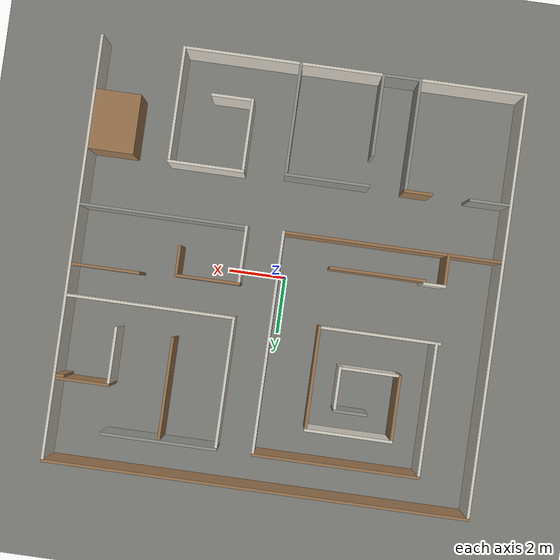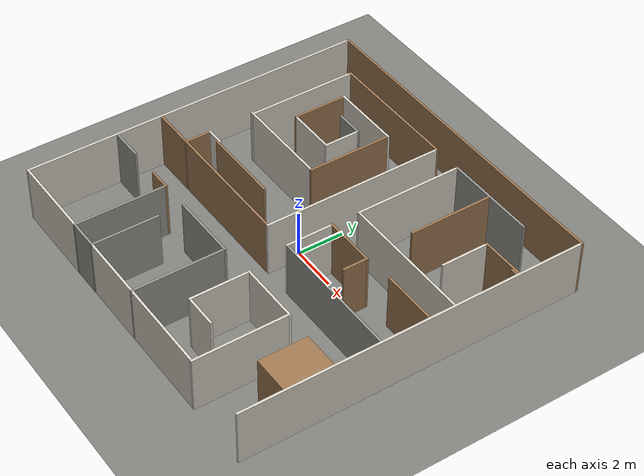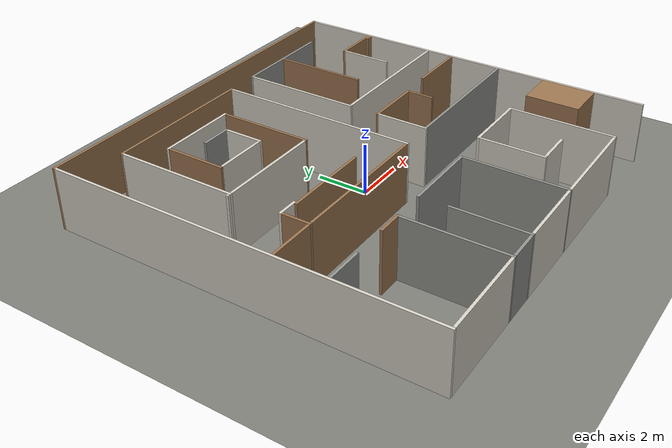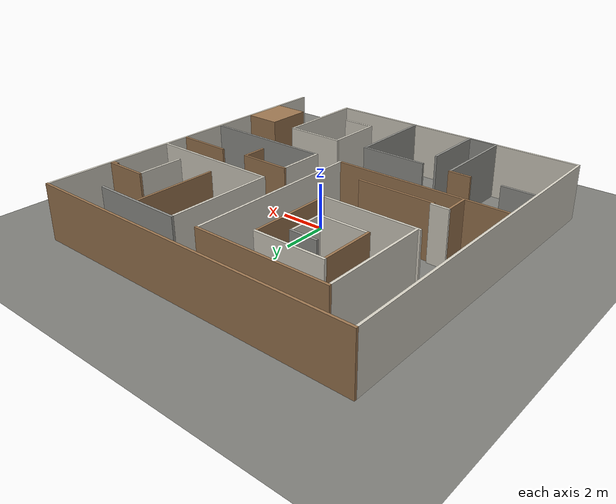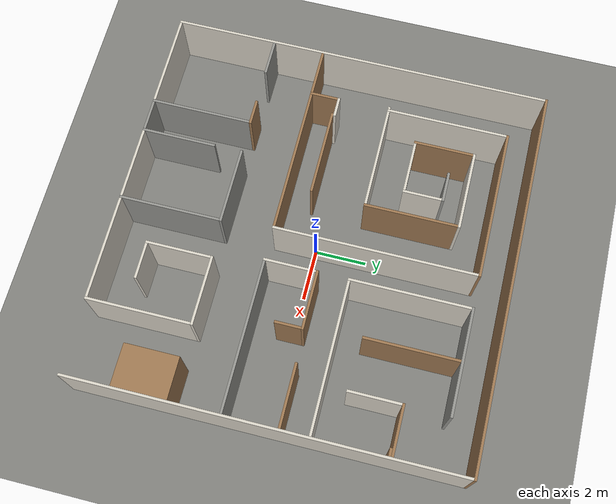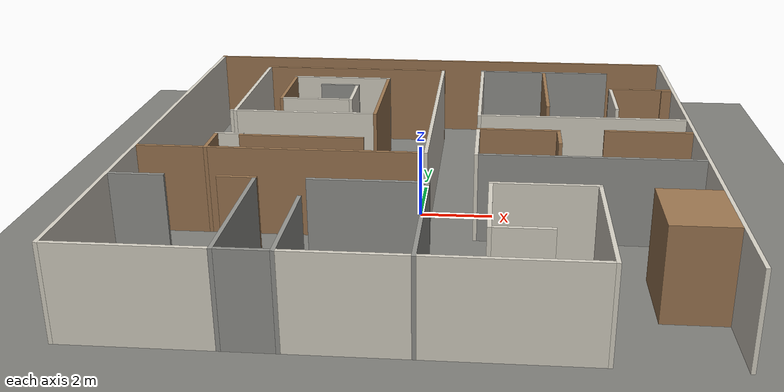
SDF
<sdf version="1.9">
 <world name="arena_world">
  <gravity>0 0 -9.8</gravity>
  <physics name="default_physics" type="ode">
   <max_step_size>0.001</max_step_size>
   <real_time_factor>1.0</real_time_factor>
   <real_time_update_rate>1000</real_time_update_rate>
   <ode>
    <solver><type>quick</type><iters>150</iters><sor>1.3</sor></solver>
    <constraints>
     <cfm>0.0</cfm>
     <erp>0.2</erp>
     <contact_max_correcting_vel>100</contact_max_correcting_vel>
     <contact_surface_layer>0.001</contact_surface_layer>
    </constraints>
   </ode>
  </physics>
  <plugin filename="gz-sim-physics-system" name="gz::sim::systems::Physics"/>
  <plugin filename="gz-sim-user-commands-system" name="gz::sim::systems::UserCommands"/>
  <plugin filename="gz-sim-scene-broadcaster-system" name="gz::sim::systems::SceneBroadcaster"/>
  <plugin filename="gz-sim-sensors-system" name="gz::sim::systems::Sensors">
   <render_engine>ogre2</render_engine>
  </plugin>
  <plugin filename="gz-sim-contact-system" name="gz::sim::systems::Contact"/>
  <scene>
   <ambient>0.5 0.5 0.5 1</ambient>
   <background>0.25 0.25 0.28 1</background>
   <shadows>true</shadows>
   <grid>false</grid>
   <origin_visual>false</origin_visual>
  </scene>
  <light type="directional" name="sun">
   <pose>0 0 15 0 0 0</pose>
   <diffuse>0.85 0.85 0.82 1</diffuse>
   <specular>0.25 0.25 0.25 1</specular>
   <direction>-0.4 0.2 -0.9</direction>
   <attenuation>
    <range>1000</range>
    <constant>0.9</constant>
    <linear>0.01</linear>
    <quadratic>0.001</quadratic>
   </attenuation>
  </light>
  <light type="point" name="ceiling_lamp_00">
   <pose>-2.50 2.50 2.34 0 0 0</pose>
   <diffuse>0.9 0.85 0.7 1</diffuse>
   <specular>0.2 0.2 0.2 1</specular>
   <attenuation>
    <range>6</range>
    <constant>0.6</constant>
    <linear>0.2</linear>
    <quadratic>0.05</quadratic>
   </attenuation>
   <cast_shadows>false</cast_shadows>
  </light>
  <light type="point" name="ceiling_lamp_01">
   <pose>-2.50 -2.50 2.34 0 0 0</pose>
   <diffuse>0.9 0.85 0.7 1</diffuse>
   <specular>0.2 0.2 0.2 1</specular>
   <attenuation>
    <range>6</range>
    <constant>0.6</constant>
    <linear>0.2</linear>
    <quadratic>0.05</quadratic>
   </attenuation>
   <cast_shadows>false</cast_shadows>
  </light>
  <light type="point" name="ceiling_lamp_02">
   <pose>-2.50 -7.50 2.34 0 0 0</pose>
   <diffuse>0.9 0.85 0.7 1</diffuse>
   <specular>0.2 0.2 0.2 1</specular>
   <attenuation>
    <range>6</range>
    <constant>0.6</constant>
    <linear>0.2</linear>
    <quadratic>0.05</quadratic>
   </attenuation>
   <cast_shadows>false</cast_shadows>
  </light>
  <light type="point" name="ceiling_lamp_03">
   <pose>2.50 2.50 2.34 0 0 0</pose>
   <diffuse>0.9 0.85 0.7 1</diffuse>
   <specular>0.2 0.2 0.2 1</specular>
   <attenuation>
    <range>6</range>
    <constant>0.6</constant>
    <linear>0.2</linear>
    <quadratic>0.05</quadratic>
   </attenuation>
   <cast_shadows>false</cast_shadows>
  </light>
  <light type="point" name="ceiling_lamp_04">
   <pose>2.50 -2.50 2.34 0 0 0</pose>
   <diffuse>0.9 0.85 0.7 1</diffuse>
   <specular>0.2 0.2 0.2 1</specular>
   <attenuation>
    <range>6</range>
    <constant>0.6</constant>
    <linear>0.2</linear>
    <quadratic>0.05</quadratic>
   </attenuation>
   <cast_shadows>false</cast_shadows>
  </light>
  <light type="point" name="ceiling_lamp_05">
   <pose>2.50 -7.50 2.34 0 0 0</pose>
   <diffuse>0.9 0.85 0.7 1</diffuse>
   <specular>0.2 0.2 0.2 1</specular>
   <attenuation>
    <range>6</range>
    <constant>0.6</constant>
    <linear>0.2</linear>
    <quadratic>0.05</quadratic>
   </attenuation>
   <cast_shadows>false</cast_shadows>
  </light>
  <light type="point" name="ceiling_lamp_06">
   <pose>7.50 2.50 2.34 0 0 0</pose>
   <diffuse>0.9 0.85 0.7 1</diffuse>
   <specular>0.2 0.2 0.2 1</specular>
   <attenuation>
    <range>6</range>
    <constant>0.6</constant>
    <linear>0.2</linear>
    <quadratic>0.05</quadratic>
   </attenuation>
   <cast_shadows>false</cast_shadows>
  </light>
  <light type="point" name="ceiling_lamp_07">
   <pose>7.50 -2.50 2.34 0 0 0</pose>
   <diffuse>0.9 0.85 0.7 1</diffuse>
   <specular>0.2 0.2 0.2 1</specular>
   <attenuation>
    <range>6</range>
    <constant>0.6</constant>
    <linear>0.2</linear>
    <quadratic>0.05</quadratic>
   </attenuation>
   <cast_shadows>false</cast_shadows>
  </light>
  <light type="point" name="ceiling_lamp_08">
   <pose>7.50 -7.50 2.34 0 0 0</pose>
   <diffuse>0.9 0.85 0.7 1</diffuse>
   <specular>0.2 0.2 0.2 1</specular>
   <attenuation>
    <range>6</range>
    <constant>0.6</constant>
    <linear>0.2</linear>
    <quadratic>0.05</quadratic>
   </attenuation>
   <cast_shadows>false</cast_shadows>
  </light>
  <model name="ground_plane">
   <static>true</static>
   <link name="link">
    <collision name="collision">
     <geometry><plane><normal>0 0 1</normal><size>15.00 15.00</size></plane></geometry>
     <surface>
      <friction><ode><mu>0.8</mu><mu2>0.8</mu2></ode></friction>
      <contact><ode><kp>1e9</kp><kd>1.0</kd></ode></contact>
     </surface>
    </collision>
    <visual name="visual">
     <geometry><plane><normal>0 0 1</normal><size>15.00 15.00</size></plane></geometry>
     <material>
      <ambient>0.45 0.45 0.44 1</ambient>
      <diffuse>0.5 0.5 0.48 1</diffuse>
      <specular>0.15 0.15 0.15 1</specular>
      <pbr><metal><roughness>0.95</roughness><metalness>0.0</metalness></metal></pbr>
     </material>
    </visual>
   </link>
  </model>
  <model name="wall_000">
   <static>true</static>
   <pose>0.0000 7.4500 1.2200 0 0 0</pose>
   <link name="link">
    <collision name="collision">
     <geometry><box><size>15.0000 0.1000 2.4400</size></box></geometry>
     <surface>
      <friction><ode><mu>0.7</mu><mu2>0.7</mu2></ode></friction>
      <contact><ode><kp>1e9</kp><kd>1.0</kd><max_vel>0.1</max_vel><min_depth>0.001</min_depth></ode></contact>
      <bounce><restitution_coefficient>0.0</restitution_coefficient><threshold>1e6</threshold></bounce>
     </surface>
    </collision>
    <visual name="visual">
     <geometry><box><size>15.0000 0.1000 2.4400</size></box></geometry>
     <material>
      <ambient>0.55 0.42 0.28 1</ambient>
      <diffuse>0.62 0.47 0.32 1</diffuse>
      <specular>0.06 0.06 0.06 1</specular>
      <pbr><metal><roughness>0.7</roughness><metalness>0.0</metalness></metal></pbr>
     </material>
    </visual>
   </link>
  </model>
  <model name="wall_001">
   <static>true</static>
   <pose>-7.4500 -0.0500 1.2200 0 0 0</pose>
   <link name="link">
    <collision name="collision">
     <geometry><box><size>0.1000 14.9000 2.4400</size></box></geometry>
     <surface>
      <friction><ode><mu>0.7</mu><mu2>0.7</mu2></ode></friction>
      <contact><ode><kp>1e9</kp><kd>1.0</kd><max_vel>0.1</max_vel><min_depth>0.001</min_depth></ode></contact>
      <bounce><restitution_coefficient>0.0</restitution_coefficient><threshold>1e6</threshold></bounce>
     </surface>
    </collision>
    <visual name="visual">
     <geometry><box><size>0.1000 14.9000 2.4400</size></box></geometry>
     <material>
      <ambient>0.82 0.80 0.75 1</ambient>
      <diffuse>0.85 0.83 0.78 1</diffuse>
      <specular>0.05 0.05 0.05 1</specular>
      <pbr><metal><roughness>0.85</roughness><metalness>0.0</metalness></metal></pbr>
     </material>
    </visual>
   </link>
  </model>
  <model name="wall_002">
   <static>true</static>
   <pose>7.4500 -0.0500 1.2200 0 0 0</pose>
   <link name="link">
    <collision name="collision">
     <geometry><box><size>0.1000 14.9000 2.4400</size></box></geometry>
     <surface>
      <friction><ode><mu>0.7</mu><mu2>0.7</mu2></ode></friction>
      <contact><ode><kp>1e9</kp><kd>1.0</kd><max_vel>0.1</max_vel><min_depth>0.001</min_depth></ode></contact>
      <bounce><restitution_coefficient>0.0</restitution_coefficient><threshold>1e6</threshold></bounce>
     </surface>
    </collision>
    <visual name="visual">
     <geometry><box><size>0.1000 14.9000 2.4400</size></box></geometry>
     <material>
      <ambient>0.82 0.80 0.75 1</ambient>
      <diffuse>0.85 0.83 0.78 1</diffuse>
      <specular>0.05 0.05 0.05 1</specular>
      <pbr><metal><roughness>0.85</roughness><metalness>0.0</metalness></metal></pbr>
     </material>
    </visual>
   </link>
  </model>
  <model name="wall_003">
   <static>true</static>
   <pose>-2.6500 6.2500 1.2200 0 0 0</pose>
   <link name="link">
    <collision name="collision">
     <geometry><box><size>5.9000 0.1000 2.4400</size></box></geometry>
     <surface>
      <friction><ode><mu>0.7</mu><mu2>0.7</mu2></ode></friction>
      <contact><ode><kp>1e9</kp><kd>1.0</kd><max_vel>0.1</max_vel><min_depth>0.001</min_depth></ode></contact>
      <bounce><restitution_coefficient>0.0</restitution_coefficient><threshold>1e6</threshold></bounce>
     </surface>
    </collision>
    <visual name="visual">
     <geometry><box><size>5.9000 0.1000 2.4400</size></box></geometry>
     <material>
      <ambient>0.55 0.42 0.28 1</ambient>
      <diffuse>0.62 0.47 0.32 1</diffuse>
      <specular>0.06 0.06 0.06 1</specular>
      <pbr><metal><roughness>0.7</roughness><metalness>0.0</metalness></metal></pbr>
     </material>
    </visual>
   </link>
  </model>
  <model name="wall_004">
   <static>true</static>
   <pose>3.5500 6.2500 1.2200 0 0 0</pose>
   <link name="link">
    <collision name="collision">
     <geometry><box><size>4.1000 0.1000 2.4400</size></box></geometry>
     <surface>
      <friction><ode><mu>0.7</mu><mu2>0.7</mu2></ode></friction>
      <contact><ode><kp>1e9</kp><kd>1.0</kd><max_vel>0.1</max_vel><min_depth>0.001</min_depth></ode></contact>
      <bounce><restitution_coefficient>0.0</restitution_coefficient><threshold>1e6</threshold></bounce>
     </surface>
    </collision>
    <visual name="visual">
     <geometry><box><size>4.1000 0.1000 2.4400</size></box></geometry>
     <material>
      <ambient>0.55 0.55 0.53 1</ambient>
      <diffuse>0.58 0.58 0.56 1</diffuse>
      <specular>0.08 0.08 0.08 1</specular>
      <pbr><metal><roughness>0.9</roughness><metalness>0.0</metalness></metal></pbr>
     </material>
    </visual>
   </link>
  </model>
  <model name="wall_005">
   <static>true</static>
   <pose>-5.5500 3.8500 1.2200 0 0 0</pose>
   <link name="link">
    <collision name="collision">
     <geometry><box><size>0.1000 4.7000 2.4400</size></box></geometry>
     <surface>
      <friction><ode><mu>0.7</mu><mu2>0.7</mu2></ode></friction>
      <contact><ode><kp>1e9</kp><kd>1.0</kd><max_vel>0.1</max_vel><min_depth>0.001</min_depth></ode></contact>
      <bounce><restitution_coefficient>0.0</restitution_coefficient><threshold>1e6</threshold></bounce>
     </surface>
    </collision>
    <visual name="visual">
     <geometry><box><size>0.1000 4.7000 2.4400</size></box></geometry>
     <material>
      <ambient>0.82 0.80 0.75 1</ambient>
      <diffuse>0.85 0.83 0.78 1</diffuse>
      <specular>0.05 0.05 0.05 1</specular>
      <pbr><metal><roughness>0.85</roughness><metalness>0.0</metalness></metal></pbr>
     </material>
    </visual>
   </link>
  </model>
  <model name="wall_006">
   <static>true</static>
   <pose>0.2500 2.3000 1.2200 0 0 0</pose>
   <link name="link">
    <collision name="collision">
     <geometry><box><size>0.1000 7.8000 2.4400</size></box></geometry>
     <surface>
      <friction><ode><mu>0.7</mu><mu2>0.7</mu2></ode></friction>
      <contact><ode><kp>1e9</kp><kd>1.0</kd><max_vel>0.1</max_vel><min_depth>0.001</min_depth></ode></contact>
      <bounce><restitution_coefficient>0.0</restitution_coefficient><threshold>1e6</threshold></bounce>
     </surface>
    </collision>
    <visual name="visual">
     <geometry><box><size>0.1000 7.8000 2.4400</size></box></geometry>
     <material>
      <ambient>0.82 0.80 0.75 1</ambient>
      <diffuse>0.85 0.83 0.78 1</diffuse>
      <specular>0.05 0.05 0.05 1</specular>
      <pbr><metal><roughness>0.85</roughness><metalness>0.0</metalness></metal></pbr>
     </material>
    </visual>
   </link>
  </model>
  <model name="wall_007">
   <static>true</static>
   <pose>1.5500 3.9000 1.2200 0 0 0</pose>
   <link name="link">
    <collision name="collision">
     <geometry><box><size>0.1000 4.6000 2.4400</size></box></geometry>
     <surface>
      <friction><ode><mu>0.7</mu><mu2>0.7</mu2></ode></friction>
      <contact><ode><kp>1e9</kp><kd>1.0</kd><max_vel>0.1</max_vel><min_depth>0.001</min_depth></ode></contact>
      <bounce><restitution_coefficient>0.0</restitution_coefficient><threshold>1e6</threshold></bounce>
     </surface>
    </collision>
    <visual name="visual">
     <geometry><box><size>0.1000 4.6000 2.4400</size></box></geometry>
     <material>
      <ambient>0.82 0.80 0.75 1</ambient>
      <diffuse>0.85 0.83 0.78 1</diffuse>
      <specular>0.05 0.05 0.05 1</specular>
      <pbr><metal><roughness>0.85</roughness><metalness>0.0</metalness></metal></pbr>
     </material>
    </visual>
   </link>
  </model>
  <model name="wall_008">
   <static>true</static>
   <pose>3.5500 4.4000 1.2200 0 0 0</pose>
   <link name="link">
    <collision name="collision">
     <geometry><box><size>0.1000 3.6000 2.4400</size></box></geometry>
     <surface>
      <friction><ode><mu>0.7</mu><mu2>0.7</mu2></ode></friction>
      <contact><ode><kp>1e9</kp><kd>1.0</kd><max_vel>0.1</max_vel><min_depth>0.001</min_depth></ode></contact>
      <bounce><restitution_coefficient>0.0</restitution_coefficient><threshold>1e6</threshold></bounce>
     </surface>
    </collision>
    <visual name="visual">
     <geometry><box><size>0.1000 3.6000 2.4400</size></box></geometry>
     <material>
      <ambient>0.55 0.42 0.28 1</ambient>
      <diffuse>0.62 0.47 0.32 1</diffuse>
      <specular>0.06 0.06 0.06 1</specular>
      <pbr><metal><roughness>0.7</roughness><metalness>0.0</metalness></metal></pbr>
     </material>
    </visual>
   </link>
  </model>
  <model name="wall_009">
   <static>true</static>
   <pose>-2.9500 5.1500 1.2200 0 0 0</pose>
   <link name="link">
    <collision name="collision">
     <geometry><box><size>3.1000 0.1000 2.4400</size></box></geometry>
     <surface>
      <friction><ode><mu>0.7</mu><mu2>0.7</mu2></ode></friction>
      <contact><ode><kp>1e9</kp><kd>1.0</kd><max_vel>0.1</max_vel><min_depth>0.001</min_depth></ode></contact>
      <bounce><restitution_coefficient>0.0</restitution_coefficient><threshold>1e6</threshold></bounce>
     </surface>
    </collision>
    <visual name="visual">
     <geometry><box><size>3.1000 0.1000 2.4400</size></box></geometry>
     <material>
      <ambient>0.82 0.80 0.75 1</ambient>
      <diffuse>0.85 0.83 0.78 1</diffuse>
      <specular>0.05 0.05 0.05 1</specular>
      <pbr><metal><roughness>0.85</roughness><metalness>0.0</metalness></metal></pbr>
     </material>
    </visual>
   </link>
  </model>
  <model name="wall_010">
   <static>true</static>
   <pose>-4.4500 3.9500 1.2200 0 0 0</pose>
   <link name="link">
    <collision name="collision">
     <geometry><box><size>0.1000 2.3000 2.4400</size></box></geometry>
     <surface>
      <friction><ode><mu>0.7</mu><mu2>0.7</mu2></ode></friction>
      <contact><ode><kp>1e9</kp><kd>1.0</kd><max_vel>0.1</max_vel><min_depth>0.001</min_depth></ode></contact>
      <bounce><restitution_coefficient>0.0</restitution_coefficient><threshold>1e6</threshold></bounce>
     </surface>
    </collision>
    <visual name="visual">
     <geometry><box><size>0.1000 2.3000 2.4400</size></box></geometry>
     <material>
      <ambient>0.55 0.42 0.28 1</ambient>
      <diffuse>0.62 0.47 0.32 1</diffuse>
      <specular>0.06 0.06 0.06 1</specular>
      <pbr><metal><roughness>0.7</roughness><metalness>0.0</metalness></metal></pbr>
     </material>
    </visual>
   </link>
  </model>
  <model name="wall_011">
   <static>true</static>
   <pose>-1.4500 3.3000 1.2200 0 0 0</pose>
   <link name="link">
    <collision name="collision">
     <geometry><box><size>0.1000 3.6000 2.4400</size></box></geometry>
     <surface>
      <friction><ode><mu>0.7</mu><mu2>0.7</mu2></ode></friction>
      <contact><ode><kp>1e9</kp><kd>1.0</kd><max_vel>0.1</max_vel><min_depth>0.001</min_depth></ode></contact>
      <bounce><restitution_coefficient>0.0</restitution_coefficient><threshold>1e6</threshold></bounce>
     </surface>
    </collision>
    <visual name="visual">
     <geometry><box><size>0.1000 3.6000 2.4400</size></box></geometry>
     <material>
      <ambient>0.55 0.42 0.28 1</ambient>
      <diffuse>0.62 0.47 0.32 1</diffuse>
      <specular>0.06 0.06 0.06 1</specular>
      <pbr><metal><roughness>0.7</roughness><metalness>0.0</metalness></metal></pbr>
     </material>
    </visual>
   </link>
  </model>
  <model name="wall_012">
   <static>true</static>
   <pose>6.4500 4.5500 1.2200 0 0 0</pose>
   <link name="link">
    <collision name="collision">
     <geometry><box><size>1.9000 0.1000 2.4400</size></box></geometry>
     <surface>
      <friction><ode><mu>0.7</mu><mu2>0.7</mu2></ode></friction>
      <contact><ode><kp>1e9</kp><kd>1.0</kd><max_vel>0.1</max_vel><min_depth>0.001</min_depth></ode></contact>
      <bounce><restitution_coefficient>0.0</restitution_coefficient><threshold>1e6</threshold></bounce>
     </surface>
    </collision>
    <visual name="visual">
     <geometry><box><size>1.9000 0.1000 2.4400</size></box></geometry>
     <material>
      <ambient>0.55 0.42 0.28 1</ambient>
      <diffuse>0.62 0.47 0.32 1</diffuse>
      <specular>0.06 0.06 0.06 1</specular>
      <pbr><metal><roughness>0.7</roughness><metalness>0.0</metalness></metal></pbr>
     </material>
    </visual>
   </link>
  </model>
  <model name="wall_013">
   <static>true</static>
   <pose>5.5500 3.5000 1.2200 0 0 0</pose>
   <link name="link">
    <collision name="collision">
     <geometry><box><size>0.1000 2.0000 2.4400</size></box></geometry>
     <surface>
      <friction><ode><mu>0.7</mu><mu2>0.7</mu2></ode></friction>
      <contact><ode><kp>1e9</kp><kd>1.0</kd><max_vel>0.1</max_vel><min_depth>0.001</min_depth></ode></contact>
      <bounce><restitution_coefficient>0.0</restitution_coefficient><threshold>1e6</threshold></bounce>
     </surface>
    </collision>
    <visual name="visual">
     <geometry><box><size>0.1000 2.0000 2.4400</size></box></geometry>
     <material>
      <ambient>0.82 0.80 0.75 1</ambient>
      <diffuse>0.85 0.83 0.78 1</diffuse>
      <specular>0.05 0.05 0.05 1</specular>
      <pbr><metal><roughness>0.85</roughness><metalness>0.0</metalness></metal></pbr>
     </material>
    </visual>
   </link>
  </model>
  <model name="wall_014">
   <static>true</static>
   <pose>7.2500 4.4500 1.2200 0 0 0</pose>
   <link name="link">
    <collision name="collision">
     <geometry><box><size>0.3000 0.1000 2.4400</size></box></geometry>
     <surface>
      <friction><ode><mu>0.7</mu><mu2>0.7</mu2></ode></friction>
      <contact><ode><kp>1e9</kp><kd>1.0</kd><max_vel>0.1</max_vel><min_depth>0.001</min_depth></ode></contact>
      <bounce><restitution_coefficient>0.0</restitution_coefficient><threshold>1e6</threshold></bounce>
     </surface>
    </collision>
    <visual name="visual">
     <geometry><box><size>0.3000 0.1000 2.4400</size></box></geometry>
     <material>
      <ambient>0.55 0.42 0.28 1</ambient>
      <diffuse>0.62 0.47 0.32 1</diffuse>
      <specular>0.06 0.06 0.06 1</specular>
      <pbr><metal><roughness>0.7</roughness><metalness>0.0</metalness></metal></pbr>
     </material>
    </visual>
   </link>
  </model>
  <model name="wall_015">
   <static>true</static>
   <pose>-2.9000 4.3500 1.2200 0 0 0</pose>
   <link name="link">
    <collision name="collision">
     <geometry><box><size>1.2000 0.1000 2.4400</size></box></geometry>
     <surface>
      <friction><ode><mu>0.7</mu><mu2>0.7</mu2></ode></friction>
      <contact><ode><kp>1e9</kp><kd>1.0</kd><max_vel>0.1</max_vel><min_depth>0.001</min_depth></ode></contact>
      <bounce><restitution_coefficient>0.0</restitution_coefficient><threshold>1e6</threshold></bounce>
     </surface>
    </collision>
    <visual name="visual">
     <geometry><box><size>1.2000 0.1000 2.4400</size></box></geometry>
     <material>
      <ambient>0.55 0.55 0.53 1</ambient>
      <diffuse>0.58 0.58 0.56 1</diffuse>
      <specular>0.08 0.08 0.08 1</specular>
      <pbr><metal><roughness>0.9</roughness><metalness>0.0</metalness></metal></pbr>
     </material>
    </visual>
   </link>
  </model>
  <model name="wall_016">
   <static>true</static>
   <pose>-2.3500 3.5500 1.2200 0 0 0</pose>
   <link name="link">
    <collision name="collision">
     <geometry><box><size>0.1000 1.5000 2.4400</size></box></geometry>
     <surface>
      <friction><ode><mu>0.7</mu><mu2>0.7</mu2></ode></friction>
      <contact><ode><kp>1e9</kp><kd>1.0</kd><max_vel>0.1</max_vel><min_depth>0.001</min_depth></ode></contact>
      <bounce><restitution_coefficient>0.0</restitution_coefficient><threshold>1e6</threshold></bounce>
     </surface>
    </collision>
    <visual name="visual">
     <geometry><box><size>0.1000 1.5000 2.4400</size></box></geometry>
     <material>
      <ambient>0.82 0.80 0.75 1</ambient>
      <diffuse>0.85 0.83 0.78 1</diffuse>
      <specular>0.05 0.05 0.05 1</specular>
      <pbr><metal><roughness>0.85</roughness><metalness>0.0</metalness></metal></pbr>
     </material>
    </visual>
   </link>
  </model>
  <model name="wall_017">
   <static>true</static>
   <pose>-3.4000 2.8500 1.2200 0 0 0</pose>
   <link name="link">
    <collision name="collision">
     <geometry><box><size>2.0000 0.1000 2.4400</size></box></geometry>
     <surface>
      <friction><ode><mu>0.7</mu><mu2>0.7</mu2></ode></friction>
      <contact><ode><kp>1e9</kp><kd>1.0</kd><max_vel>0.1</max_vel><min_depth>0.001</min_depth></ode></contact>
      <bounce><restitution_coefficient>0.0</restitution_coefficient><threshold>1e6</threshold></bounce>
     </surface>
    </collision>
    <visual name="visual">
     <geometry><box><size>2.0000 0.1000 2.4400</size></box></geometry>
     <material>
      <ambient>0.82 0.80 0.75 1</ambient>
      <diffuse>0.85 0.83 0.78 1</diffuse>
      <specular>0.05 0.05 0.05 1</specular>
      <pbr><metal><roughness>0.85</roughness><metalness>0.0</metalness></metal></pbr>
     </material>
    </visual>
   </link>
  </model>
  <model name="wall_018">
   <static>true</static>
   <pose>4.5000 1.6500 1.2200 0 0 0</pose>
   <link name="link">
    <collision name="collision">
     <geometry><box><size>5.8000 0.1000 2.4400</size></box></geometry>
     <surface>
      <friction><ode><mu>0.7</mu><mu2>0.7</mu2></ode></friction>
      <contact><ode><kp>1e9</kp><kd>1.0</kd><max_vel>0.1</max_vel><min_depth>0.001</min_depth></ode></contact>
      <bounce><restitution_coefficient>0.0</restitution_coefficient><threshold>1e6</threshold></bounce>
     </surface>
    </collision>
    <visual name="visual">
     <geometry><box><size>5.8000 0.1000 2.4400</size></box></geometry>
     <material>
      <ambient>0.82 0.80 0.75 1</ambient>
      <diffuse>0.85 0.83 0.78 1</diffuse>
      <specular>0.05 0.05 0.05 1</specular>
      <pbr><metal><roughness>0.85</roughness><metalness>0.0</metalness></metal></pbr>
     </material>
    </visual>
   </link>
  </model>
  <model name="wall_019">
   <static>true</static>
   <pose>-5.6500 1.5500 1.2200 0 0 0</pose>
   <link name="link">
    <collision name="collision">
     <geometry><box><size>0.1000 0.1000 2.4400</size></box></geometry>
     <surface>
      <friction><ode><mu>0.7</mu><mu2>0.7</mu2></ode></friction>
      <contact><ode><kp>1e9</kp><kd>1.0</kd><max_vel>0.1</max_vel><min_depth>0.001</min_depth></ode></contact>
      <bounce><restitution_coefficient>0.0</restitution_coefficient><threshold>1e6</threshold></bounce>
     </surface>
    </collision>
    <visual name="visual">
     <geometry><box><size>0.1000 0.1000 2.4400</size></box></geometry>
     <material>
      <ambient>0.82 0.80 0.75 1</ambient>
      <diffuse>0.85 0.83 0.78 1</diffuse>
      <specular>0.05 0.05 0.05 1</specular>
      <pbr><metal><roughness>0.85</roughness><metalness>0.0</metalness></metal></pbr>
     </material>
    </visual>
   </link>
  </model>
  <model name="wall_020">
   <static>true</static>
   <pose>-3.5000 1.5500 1.2200 0 0 0</pose>
   <link name="link">
    <collision name="collision">
     <geometry><box><size>4.0000 0.1000 2.4400</size></box></geometry>
     <surface>
      <friction><ode><mu>0.7</mu><mu2>0.7</mu2></ode></friction>
      <contact><ode><kp>1e9</kp><kd>1.0</kd><max_vel>0.1</max_vel><min_depth>0.001</min_depth></ode></contact>
      <bounce><restitution_coefficient>0.0</restitution_coefficient><threshold>1e6</threshold></bounce>
     </surface>
    </collision>
    <visual name="visual">
     <geometry><box><size>4.0000 0.1000 2.4400</size></box></geometry>
     <material>
      <ambient>0.82 0.80 0.75 1</ambient>
      <diffuse>0.85 0.83 0.78 1</diffuse>
      <specular>0.05 0.05 0.05 1</specular>
      <pbr><metal><roughness>0.85</roughness><metalness>0.0</metalness></metal></pbr>
     </material>
    </visual>
   </link>
  </model>
  <model name="wall_021">
   <static>true</static>
   <pose>6.2000 0.5500 1.2200 0 0 0</pose>
   <link name="link">
    <collision name="collision">
     <geometry><box><size>2.4000 0.1000 2.4400</size></box></geometry>
     <surface>
      <friction><ode><mu>0.7</mu><mu2>0.7</mu2></ode></friction>
      <contact><ode><kp>1e9</kp><kd>1.0</kd><max_vel>0.1</max_vel><min_depth>0.001</min_depth></ode></contact>
      <bounce><restitution_coefficient>0.0</restitution_coefficient><threshold>1e6</threshold></bounce>
     </surface>
    </collision>
    <visual name="visual">
     <geometry><box><size>2.4000 0.1000 2.4400</size></box></geometry>
     <material>
      <ambient>0.55 0.42 0.28 1</ambient>
      <diffuse>0.62 0.47 0.32 1</diffuse>
      <specular>0.06 0.06 0.06 1</specular>
      <pbr><metal><roughness>0.7</roughness><metalness>0.0</metalness></metal></pbr>
     </material>
    </visual>
   </link>
  </model>
  <model name="wall_022">
   <static>true</static>
   <pose>2.6500 0.4500 1.2200 0 0 0</pose>
   <link name="link">
    <collision name="collision">
     <geometry><box><size>2.3000 0.1000 2.4400</size></box></geometry>
     <surface>
      <friction><ode><mu>0.7</mu><mu2>0.7</mu2></ode></friction>
      <contact><ode><kp>1e9</kp><kd>1.0</kd><max_vel>0.1</max_vel><min_depth>0.001</min_depth></ode></contact>
      <bounce><restitution_coefficient>0.0</restitution_coefficient><threshold>1e6</threshold></bounce>
     </surface>
    </collision>
    <visual name="visual">
     <geometry><box><size>2.3000 0.1000 2.4400</size></box></geometry>
     <material>
      <ambient>0.55 0.42 0.28 1</ambient>
      <diffuse>0.62 0.47 0.32 1</diffuse>
      <specular>0.06 0.06 0.06 1</specular>
      <pbr><metal><roughness>0.7</roughness><metalness>0.0</metalness></metal></pbr>
     </material>
    </visual>
   </link>
  </model>
  <model name="wall_023">
   <static>true</static>
   <pose>1.5500 -0.6000 1.2200 0 0 0</pose>
   <link name="link">
    <collision name="collision">
     <geometry><box><size>0.1000 2.0000 2.4400</size></box></geometry>
     <surface>
      <friction><ode><mu>0.7</mu><mu2>0.7</mu2></ode></friction>
      <contact><ode><kp>1e9</kp><kd>1.0</kd><max_vel>0.1</max_vel><min_depth>0.001</min_depth></ode></contact>
      <bounce><restitution_coefficient>0.0</restitution_coefficient><threshold>1e6</threshold></bounce>
     </surface>
    </collision>
    <visual name="visual">
     <geometry><box><size>0.1000 2.0000 2.4400</size></box></geometry>
     <material>
      <ambient>0.82 0.80 0.75 1</ambient>
      <diffuse>0.85 0.83 0.78 1</diffuse>
      <specular>0.05 0.05 0.05 1</specular>
      <pbr><metal><roughness>0.85</roughness><metalness>0.0</metalness></metal></pbr>
     </material>
    </visual>
   </link>
  </model>
  <model name="wall_024">
   <static>true</static>
   <pose>3.7500 -0.1000 1.2200 0 0 0</pose>
   <link name="link">
    <collision name="collision">
     <geometry><box><size>0.1000 1.0000 2.4400</size></box></geometry>
     <surface>
      <friction><ode><mu>0.7</mu><mu2>0.7</mu2></ode></friction>
      <contact><ode><kp>1e9</kp><kd>1.0</kd><max_vel>0.1</max_vel><min_depth>0.001</min_depth></ode></contact>
      <bounce><restitution_coefficient>0.0</restitution_coefficient><threshold>1e6</threshold></bounce>
     </surface>
    </collision>
    <visual name="visual">
     <geometry><box><size>0.1000 1.0000 2.4400</size></box></geometry>
     <material>
      <ambient>0.55 0.42 0.28 1</ambient>
      <diffuse>0.62 0.47 0.32 1</diffuse>
      <specular>0.06 0.06 0.06 1</specular>
      <pbr><metal><roughness>0.7</roughness><metalness>0.0</metalness></metal></pbr>
     </material>
    </visual>
   </link>
  </model>
  <model name="wall_025">
   <static>true</static>
   <pose>-5.2000 -0.4500 1.2200 0 0 0</pose>
   <link name="link">
    <collision name="collision">
     <geometry><box><size>0.8000 0.1000 2.4400</size></box></geometry>
     <surface>
      <friction><ode><mu>0.7</mu><mu2>0.7</mu2></ode></friction>
      <contact><ode><kp>1e9</kp><kd>1.0</kd><max_vel>0.1</max_vel><min_depth>0.001</min_depth></ode></contact>
      <bounce><restitution_coefficient>0.0</restitution_coefficient><threshold>1e6</threshold></bounce>
     </surface>
    </collision>
    <visual name="visual">
     <geometry><box><size>0.8000 0.1000 2.4400</size></box></geometry>
     <material>
      <ambient>0.82 0.80 0.75 1</ambient>
      <diffuse>0.85 0.83 0.78 1</diffuse>
      <specular>0.05 0.05 0.05 1</specular>
      <pbr><metal><roughness>0.85</roughness><metalness>0.0</metalness></metal></pbr>
     </material>
    </visual>
   </link>
  </model>
  <model name="wall_026">
   <static>true</static>
   <pose>-5.5500 -1.0500 1.2200 0 0 0</pose>
   <link name="link">
    <collision name="collision">
     <geometry><box><size>0.1000 1.1000 2.4400</size></box></geometry>
     <surface>
      <friction><ode><mu>0.7</mu><mu2>0.7</mu2></ode></friction>
      <contact><ode><kp>1e9</kp><kd>1.0</kd><max_vel>0.1</max_vel><min_depth>0.001</min_depth></ode></contact>
      <bounce><restitution_coefficient>0.0</restitution_coefficient><threshold>1e6</threshold></bounce>
     </surface>
    </collision>
    <visual name="visual">
     <geometry><box><size>0.1000 1.1000 2.4400</size></box></geometry>
     <material>
      <ambient>0.55 0.42 0.28 1</ambient>
      <diffuse>0.62 0.47 0.32 1</diffuse>
      <specular>0.06 0.06 0.06 1</specular>
      <pbr><metal><roughness>0.7</roughness><metalness>0.0</metalness></metal></pbr>
     </material>
    </visual>
   </link>
  </model>
  <model name="wall_027">
   <static>true</static>
   <pose>-3.2000 -0.5500 1.2200 0 0 0</pose>
   <link name="link">
    <collision name="collision">
     <geometry><box><size>3.4000 0.1000 2.4400</size></box></geometry>
     <surface>
      <friction><ode><mu>0.7</mu><mu2>0.7</mu2></ode></friction>
      <contact><ode><kp>1e9</kp><kd>1.0</kd><max_vel>0.1</max_vel><min_depth>0.001</min_depth></ode></contact>
      <bounce><restitution_coefficient>0.0</restitution_coefficient><threshold>1e6</threshold></bounce>
     </surface>
    </collision>
    <visual name="visual">
     <geometry><box><size>3.4000 0.1000 2.4400</size></box></geometry>
     <material>
      <ambient>0.55 0.42 0.28 1</ambient>
      <diffuse>0.62 0.47 0.32 1</diffuse>
      <specular>0.06 0.06 0.06 1</specular>
      <pbr><metal><roughness>0.7</roughness><metalness>0.0</metalness></metal></pbr>
     </material>
    </visual>
   </link>
  </model>
  <model name="wall_028">
   <static>true</static>
   <pose>-6.5000 -1.5500 1.2200 0 0 0</pose>
   <link name="link">
    <collision name="collision">
     <geometry><box><size>1.8000 0.1000 2.4400</size></box></geometry>
     <surface>
      <friction><ode><mu>0.7</mu><mu2>0.7</mu2></ode></friction>
      <contact><ode><kp>1e9</kp><kd>1.0</kd><max_vel>0.1</max_vel><min_depth>0.001</min_depth></ode></contact>
      <bounce><restitution_coefficient>0.0</restitution_coefficient><threshold>1e6</threshold></bounce>
     </surface>
    </collision>
    <visual name="visual">
     <geometry><box><size>1.8000 0.1000 2.4400</size></box></geometry>
     <material>
      <ambient>0.55 0.42 0.28 1</ambient>
      <diffuse>0.62 0.47 0.32 1</diffuse>
      <specular>0.06 0.06 0.06 1</specular>
      <pbr><metal><roughness>0.7</roughness><metalness>0.0</metalness></metal></pbr>
     </material>
    </visual>
   </link>
  </model>
  <model name="wall_029">
   <static>true</static>
   <pose>-2.6500 -1.5500 1.2200 0 0 0</pose>
   <link name="link">
    <collision name="collision">
     <geometry><box><size>5.7000 0.1000 2.4400</size></box></geometry>
     <surface>
      <friction><ode><mu>0.7</mu><mu2>0.7</mu2></ode></friction>
      <contact><ode><kp>1e9</kp><kd>1.0</kd><max_vel>0.1</max_vel><min_depth>0.001</min_depth></ode></contact>
      <bounce><restitution_coefficient>0.0</restitution_coefficient><threshold>1e6</threshold></bounce>
     </surface>
    </collision>
    <visual name="visual">
     <geometry><box><size>5.7000 0.1000 2.4400</size></box></geometry>
     <material>
      <ambient>0.55 0.42 0.28 1</ambient>
      <diffuse>0.62 0.47 0.32 1</diffuse>
      <specular>0.06 0.06 0.06 1</specular>
      <pbr><metal><roughness>0.7</roughness><metalness>0.0</metalness></metal></pbr>
     </material>
    </visual>
   </link>
  </model>
  <model name="wall_030">
   <static>true</static>
   <pose>4.5000 -1.5500 1.2200 0 0 0</pose>
   <link name="link">
    <collision name="collision">
     <geometry><box><size>5.8000 0.1000 2.4400</size></box></geometry>
     <surface>
      <friction><ode><mu>0.7</mu><mu2>0.7</mu2></ode></friction>
      <contact><ode><kp>1e9</kp><kd>1.0</kd><max_vel>0.1</max_vel><min_depth>0.001</min_depth></ode></contact>
      <bounce><restitution_coefficient>0.0</restitution_coefficient><threshold>1e6</threshold></bounce>
     </surface>
    </collision>
    <visual name="visual">
     <geometry><box><size>5.8000 0.1000 2.4400</size></box></geometry>
     <material>
      <ambient>0.55 0.55 0.53 1</ambient>
      <diffuse>0.58 0.58 0.56 1</diffuse>
      <specular>0.08 0.08 0.08 1</specular>
      <pbr><metal><roughness>0.9</roughness><metalness>0.0</metalness></metal></pbr>
     </material>
    </visual>
   </link>
  </model>
  <model name="wall_031">
   <static>true</static>
   <pose>3.2500 -3.4500 1.2200 0 0 0</pose>
   <link name="link">
    <collision name="collision">
     <geometry><box><size>2.7000 0.1000 2.4400</size></box></geometry>
     <surface>
      <friction><ode><mu>0.7</mu><mu2>0.7</mu2></ode></friction>
      <contact><ode><kp>1e9</kp><kd>1.0</kd><max_vel>0.1</max_vel><min_depth>0.001</min_depth></ode></contact>
      <bounce><restitution_coefficient>0.0</restitution_coefficient><threshold>1e6</threshold></bounce>
     </surface>
    </collision>
    <visual name="visual">
     <geometry><box><size>2.7000 0.1000 2.4400</size></box></geometry>
     <material>
      <ambient>0.82 0.80 0.75 1</ambient>
      <diffuse>0.85 0.83 0.78 1</diffuse>
      <specular>0.05 0.05 0.05 1</specular>
      <pbr><metal><roughness>0.85</roughness><metalness>0.0</metalness></metal></pbr>
     </material>
    </visual>
   </link>
  </model>
  <model name="wall_032">
   <static>true</static>
   <pose>-6.7000 -3.5500 1.2200 0 0 0</pose>
   <link name="link">
    <collision name="collision">
     <geometry><box><size>1.4000 0.1000 2.4400</size></box></geometry>
     <surface>
      <friction><ode><mu>0.7</mu><mu2>0.7</mu2></ode></friction>
      <contact><ode><kp>1e9</kp><kd>1.0</kd><max_vel>0.1</max_vel><min_depth>0.001</min_depth></ode></contact>
      <bounce><restitution_coefficient>0.0</restitution_coefficient><threshold>1e6</threshold></bounce>
     </surface>
    </collision>
    <visual name="visual">
     <geometry><box><size>1.4000 0.1000 2.4400</size></box></geometry>
     <material>
      <ambient>0.55 0.55 0.53 1</ambient>
      <diffuse>0.58 0.58 0.56 1</diffuse>
      <specular>0.08 0.08 0.08 1</specular>
      <pbr><metal><roughness>0.9</roughness><metalness>0.0</metalness></metal></pbr>
     </material>
    </visual>
   </link>
  </model>
  <model name="wall_033">
   <static>true</static>
   <pose>-4.2000 -3.5500 1.2200 0 0 0</pose>
   <link name="link">
    <collision name="collision">
     <geometry><box><size>1.0000 0.1000 2.4400</size></box></geometry>
     <surface>
      <friction><ode><mu>0.7</mu><mu2>0.7</mu2></ode></friction>
      <contact><ode><kp>1e9</kp><kd>1.0</kd><max_vel>0.1</max_vel><min_depth>0.001</min_depth></ode></contact>
      <bounce><restitution_coefficient>0.0</restitution_coefficient><threshold>1e6</threshold></bounce>
     </surface>
    </collision>
    <visual name="visual">
     <geometry><box><size>1.0000 0.1000 2.4400</size></box></geometry>
     <material>
      <ambient>0.55 0.42 0.28 1</ambient>
      <diffuse>0.62 0.47 0.32 1</diffuse>
      <specular>0.06 0.06 0.06 1</specular>
      <pbr><metal><roughness>0.7</roughness><metalness>0.0</metalness></metal></pbr>
     </material>
    </visual>
   </link>
  </model>
  <model name="wall_034">
   <static>true</static>
   <pose>-1.0000 -3.5500 1.2200 0 0 0</pose>
   <link name="link">
    <collision name="collision">
     <geometry><box><size>3.0000 0.1000 2.4400</size></box></geometry>
     <surface>
      <friction><ode><mu>0.7</mu><mu2>0.7</mu2></ode></friction>
      <contact><ode><kp>1e9</kp><kd>1.0</kd><max_vel>0.1</max_vel><min_depth>0.001</min_depth></ode></contact>
      <bounce><restitution_coefficient>0.0</restitution_coefficient><threshold>1e6</threshold></bounce>
     </surface>
    </collision>
    <visual name="visual">
     <geometry><box><size>3.0000 0.1000 2.4400</size></box></geometry>
     <material>
      <ambient>0.55 0.55 0.53 1</ambient>
      <diffuse>0.58 0.58 0.56 1</diffuse>
      <specular>0.08 0.08 0.08 1</specular>
      <pbr><metal><roughness>0.9</roughness><metalness>0.0</metalness></metal></pbr>
     </material>
    </visual>
   </link>
  </model>
  <model name="wall_035">
   <static>true</static>
   <pose>1.9500 -4.7500 1.2200 0 0 0</pose>
   <link name="link">
    <collision name="collision">
     <geometry><box><size>0.1000 2.5000 2.4400</size></box></geometry>
     <surface>
      <friction><ode><mu>0.7</mu><mu2>0.7</mu2></ode></friction>
      <contact><ode><kp>1e9</kp><kd>1.0</kd><max_vel>0.1</max_vel><min_depth>0.001</min_depth></ode></contact>
      <bounce><restitution_coefficient>0.0</restitution_coefficient><threshold>1e6</threshold></bounce>
     </surface>
    </collision>
    <visual name="visual">
     <geometry><box><size>0.1000 2.5000 2.4400</size></box></geometry>
     <material>
      <ambient>0.82 0.80 0.75 1</ambient>
      <diffuse>0.85 0.83 0.78 1</diffuse>
      <specular>0.05 0.05 0.05 1</specular>
      <pbr><metal><roughness>0.85</roughness><metalness>0.0</metalness></metal></pbr>
     </material>
    </visual>
   </link>
  </model>
  <model name="wall_036">
   <static>true</static>
   <pose>4.5500 -5.5000 1.2200 0 0 0</pose>
   <link name="link">
    <collision name="collision">
     <geometry><box><size>0.1000 4.0000 2.4400</size></box></geometry>
     <surface>
      <friction><ode><mu>0.7</mu><mu2>0.7</mu2></ode></friction>
      <contact><ode><kp>1e9</kp><kd>1.0</kd><max_vel>0.1</max_vel><min_depth>0.001</min_depth></ode></contact>
      <bounce><restitution_coefficient>0.0</restitution_coefficient><threshold>1e6</threshold></bounce>
     </surface>
    </collision>
    <visual name="visual">
     <geometry><box><size>0.1000 4.0000 2.4400</size></box></geometry>
     <material>
      <ambient>0.82 0.80 0.75 1</ambient>
      <diffuse>0.85 0.83 0.78 1</diffuse>
      <specular>0.05 0.05 0.05 1</specular>
      <pbr><metal><roughness>0.85</roughness><metalness>0.0</metalness></metal></pbr>
     </material>
    </visual>
   </link>
  </model>
  <model name="wall_037">
   <static>true</static>
   <pose>6.6000 -4.5500 1.2200 0 0 0</pose>
   <link name="link">
    <collision name="collision">
     <geometry><box><size>1.6000 2.1000 2.4400</size></box></geometry>
     <surface>
      <friction><ode><mu>0.7</mu><mu2>0.7</mu2></ode></friction>
      <contact><ode><kp>1e9</kp><kd>1.0</kd><max_vel>0.1</max_vel><min_depth>0.001</min_depth></ode></contact>
      <bounce><restitution_coefficient>0.0</restitution_coefficient><threshold>1e6</threshold></bounce>
     </surface>
    </collision>
    <visual name="visual">
     <geometry><box><size>1.6000 2.1000 2.4400</size></box></geometry>
     <material>
      <ambient>0.55 0.42 0.28 1</ambient>
      <diffuse>0.62 0.47 0.32 1</diffuse>
      <specular>0.06 0.06 0.06 1</specular>
      <pbr><metal><roughness>0.7</roughness><metalness>0.0</metalness></metal></pbr>
     </material>
    </visual>
   </link>
  </model>
  <model name="wall_038">
   <static>true</static>
   <pose>-3.7500 -5.5500 1.2200 0 0 0</pose>
   <link name="link">
    <collision name="collision">
     <geometry><box><size>0.1000 3.9000 2.4400</size></box></geometry>
     <surface>
      <friction><ode><mu>0.7</mu><mu2>0.7</mu2></ode></friction>
      <contact><ode><kp>1e9</kp><kd>1.0</kd><max_vel>0.1</max_vel><min_depth>0.001</min_depth></ode></contact>
      <bounce><restitution_coefficient>0.0</restitution_coefficient><threshold>1e6</threshold></bounce>
     </surface>
    </collision>
    <visual name="visual">
     <geometry><box><size>0.1000 3.9000 2.4400</size></box></geometry>
     <material>
      <ambient>0.55 0.55 0.53 1</ambient>
      <diffuse>0.58 0.58 0.56 1</diffuse>
      <specular>0.08 0.08 0.08 1</specular>
      <pbr><metal><roughness>0.9</roughness><metalness>0.0</metalness></metal></pbr>
     </material>
    </visual>
   </link>
  </model>
  <model name="wall_039">
   <static>true</static>
   <pose>0.4500 -5.5500 1.2200 0 0 0</pose>
   <link name="link">
    <collision name="collision">
     <geometry><box><size>0.1000 3.9000 2.4400</size></box></geometry>
     <surface>
      <friction><ode><mu>0.7</mu><mu2>0.7</mu2></ode></friction>
      <contact><ode><kp>1e9</kp><kd>1.0</kd><max_vel>0.1</max_vel><min_depth>0.001</min_depth></ode></contact>
      <bounce><restitution_coefficient>0.0</restitution_coefficient><threshold>1e6</threshold></bounce>
     </surface>
    </collision>
    <visual name="visual">
     <geometry><box><size>0.1000 3.9000 2.4400</size></box></geometry>
     <material>
      <ambient>0.55 0.55 0.53 1</ambient>
      <diffuse>0.58 0.58 0.56 1</diffuse>
      <specular>0.08 0.08 0.08 1</specular>
      <pbr><metal><roughness>0.9</roughness><metalness>0.0</metalness></metal></pbr>
     </material>
    </visual>
   </link>
  </model>
  <model name="wall_040">
   <static>true</static>
   <pose>-2.4500 -6.0500 1.2200 0 0 0</pose>
   <link name="link">
    <collision name="collision">
     <geometry><box><size>0.1000 2.9000 2.4400</size></box></geometry>
     <surface>
      <friction><ode><mu>0.7</mu><mu2>0.7</mu2></ode></friction>
      <contact><ode><kp>1e9</kp><kd>1.0</kd><max_vel>0.1</max_vel><min_depth>0.001</min_depth></ode></contact>
      <bounce><restitution_coefficient>0.0</restitution_coefficient><threshold>1e6</threshold></bounce>
     </surface>
    </collision>
    <visual name="visual">
     <geometry><box><size>0.1000 2.9000 2.4400</size></box></geometry>
     <material>
      <ambient>0.55 0.55 0.53 1</ambient>
      <diffuse>0.58 0.58 0.56 1</diffuse>
      <specular>0.08 0.08 0.08 1</specular>
      <pbr><metal><roughness>0.9</roughness><metalness>0.0</metalness></metal></pbr>
     </material>
    </visual>
   </link>
  </model>
  <model name="wall_041">
   <static>true</static>
   <pose>2.7000 -5.9500 1.2200 0 0 0</pose>
   <link name="link">
    <collision name="collision">
     <geometry><box><size>1.4000 0.1000 2.4400</size></box></geometry>
     <surface>
      <friction><ode><mu>0.7</mu><mu2>0.7</mu2></ode></friction>
      <contact><ode><kp>1e9</kp><kd>1.0</kd><max_vel>0.1</max_vel><min_depth>0.001</min_depth></ode></contact>
      <bounce><restitution_coefficient>0.0</restitution_coefficient><threshold>1e6</threshold></bounce>
     </surface>
    </collision>
    <visual name="visual">
     <geometry><box><size>1.4000 0.1000 2.4400</size></box></geometry>
     <material>
      <ambient>0.82 0.80 0.75 1</ambient>
      <diffuse>0.85 0.83 0.78 1</diffuse>
      <specular>0.05 0.05 0.05 1</specular>
      <pbr><metal><roughness>0.85</roughness><metalness>0.0</metalness></metal></pbr>
     </material>
    </visual>
   </link>
  </model>
  <model name="wall_042">
   <static>true</static>
   <pose>-5.6000 -7.4500 1.2200 0 0 0</pose>
   <link name="link">
    <collision name="collision">
     <geometry><box><size>3.6000 0.1000 2.4400</size></box></geometry>
     <surface>
      <friction><ode><mu>0.7</mu><mu2>0.7</mu2></ode></friction>
      <contact><ode><kp>1e9</kp><kd>1.0</kd><max_vel>0.1</max_vel><min_depth>0.001</min_depth></ode></contact>
      <bounce><restitution_coefficient>0.0</restitution_coefficient><threshold>1e6</threshold></bounce>
     </surface>
    </collision>
    <visual name="visual">
     <geometry><box><size>3.6000 0.1000 2.4400</size></box></geometry>
     <material>
      <ambient>0.82 0.80 0.75 1</ambient>
      <diffuse>0.85 0.83 0.78 1</diffuse>
      <specular>0.05 0.05 0.05 1</specular>
      <pbr><metal><roughness>0.85</roughness><metalness>0.0</metalness></metal></pbr>
     </material>
    </visual>
   </link>
  </model>
  <model name="wall_043">
   <static>true</static>
   <pose>-3.1000 -7.4500 1.2200 0 0 0</pose>
   <link name="link">
    <collision name="collision">
     <geometry><box><size>1.2000 0.1000 2.4400</size></box></geometry>
     <surface>
      <friction><ode><mu>0.7</mu><mu2>0.7</mu2></ode></friction>
      <contact><ode><kp>1e9</kp><kd>1.0</kd><max_vel>0.1</max_vel><min_depth>0.001</min_depth></ode></contact>
      <bounce><restitution_coefficient>0.0</restitution_coefficient><threshold>1e6</threshold></bounce>
     </surface>
    </collision>
    <visual name="visual">
     <geometry><box><size>1.2000 0.1000 2.4400</size></box></geometry>
     <material>
      <ambient>0.55 0.55 0.53 1</ambient>
      <diffuse>0.58 0.58 0.56 1</diffuse>
      <specular>0.08 0.08 0.08 1</specular>
      <pbr><metal><roughness>0.9</roughness><metalness>0.0</metalness></metal></pbr>
     </material>
    </visual>
   </link>
  </model>
  <model name="wall_044">
   <static>true</static>
   <pose>-1.0000 -7.4500 1.2200 0 0 0</pose>
   <link name="link">
    <collision name="collision">
     <geometry><box><size>2.8000 0.1000 2.4400</size></box></geometry>
     <surface>
      <friction><ode><mu>0.7</mu><mu2>0.7</mu2></ode></friction>
      <contact><ode><kp>1e9</kp><kd>1.0</kd><max_vel>0.1</max_vel><min_depth>0.001</min_depth></ode></contact>
      <bounce><restitution_coefficient>0.0</restitution_coefficient><threshold>1e6</threshold></bounce>
     </surface>
    </collision>
    <visual name="visual">
     <geometry><box><size>2.8000 0.1000 2.4400</size></box></geometry>
     <material>
      <ambient>0.82 0.80 0.75 1</ambient>
      <diffuse>0.85 0.83 0.78 1</diffuse>
      <specular>0.05 0.05 0.05 1</specular>
      <pbr><metal><roughness>0.85</roughness><metalness>0.0</metalness></metal></pbr>
     </material>
    </visual>
   </link>
  </model>
  <model name="wall_045">
   <static>true</static>
   <pose>2.5000 -7.4500 1.2200 0 0 0</pose>
   <link name="link">
    <collision name="collision">
     <geometry><box><size>4.0000 0.1000 2.4400</size></box></geometry>
     <surface>
      <friction><ode><mu>0.7</mu><mu2>0.7</mu2></ode></friction>
      <contact><ode><kp>1e9</kp><kd>1.0</kd><max_vel>0.1</max_vel><min_depth>0.001</min_depth></ode></contact>
      <bounce><restitution_coefficient>0.0</restitution_coefficient><threshold>1e6</threshold></bounce>
     </surface>
    </collision>
    <visual name="visual">
     <geometry><box><size>4.0000 0.1000 2.4400</size></box></geometry>
     <material>
      <ambient>0.82 0.80 0.75 1</ambient>
      <diffuse>0.85 0.83 0.78 1</diffuse>
      <specular>0.05 0.05 0.05 1</specular>
      <pbr><metal><roughness>0.85</roughness><metalness>0.0</metalness></metal></pbr>
     </material>
    </visual>
   </link>
  </model>
  <model name="lidar_2d">
   <pose>0 0 2.0 0 0 0</pose>
   <static>false</static>
   <link name="lidar_link">
    <gravity>false</gravity>
    <inertial>
     <mass>0.2</mass>
     <inertia><ixx>0.0002</ixx><iyy>0.0002</iyy><izz>0.0003</izz><ixy>0</ixy><ixz>0</ixz><iyz>0</iyz></inertia>
    </inertial>
    <visual name="base_visual">
     <geometry><cylinder><radius>0.05</radius><length>0.04</length></cylinder></geometry>
     <material>
      <ambient>0.1 0.1 0.1 1</ambient>
      <diffuse>0.15 0.15 0.15 1</diffuse>
      <specular>0.3 0.3 0.3 1</specular>
     </material>
    </visual>
    <visual name="top_visual">
     <pose>0 0 0.035 0 0 0</pose>
     <geometry><cylinder><radius>0.035</radius><length>0.03</length></cylinder></geometry>
     <material>
      <ambient>0.9 0.1 0.1 1</ambient>
      <diffuse>0.9 0.15 0.15 1</diffuse>
      <specular>0.5 0.5 0.5 1</specular>
     </material>
    </visual>
    <collision name="collision">
     <geometry><cylinder><radius>0.05</radius><length>0.07</length></cylinder></geometry>
    </collision>
    <sensor name="lidar_2d_sensor" type="gpu_lidar">
     <pose>0 0 0.05 0 0 0</pose>
     <topic>lidar_2d/scan</topic>
     <update_rate>10</update_rate>
     <always_on>1</always_on>
     <visualize>true</visualize>
     <lidar>
      <scan>
       <horizontal>
        <samples>640</samples>
        <resolution>1</resolution>
        <min_angle>-3.14159265</min_angle>
        <max_angle>3.14159265</max_angle>
       </horizontal>
       <vertical>
        <samples>1</samples>
        <resolution>1</resolution>
        <min_angle>0</min_angle>
        <max_angle>0</max_angle>
       </vertical>
      </scan>
      <range><min>0.10</min><max>12.0</max><resolution>0.01</resolution></range>
      <noise><type>gaussian</type><mean>0.0</mean><stddev>0.01</stddev></noise>
     </lidar>
    </sensor>
   </link>
  </model>
 </world>
</sdf>
